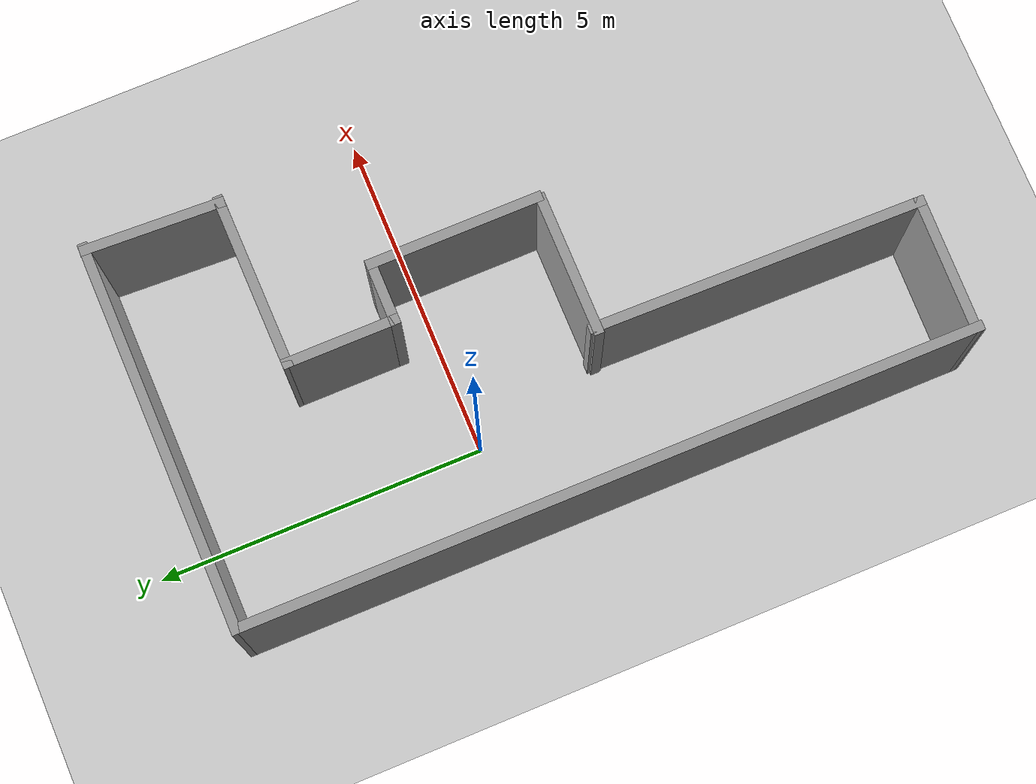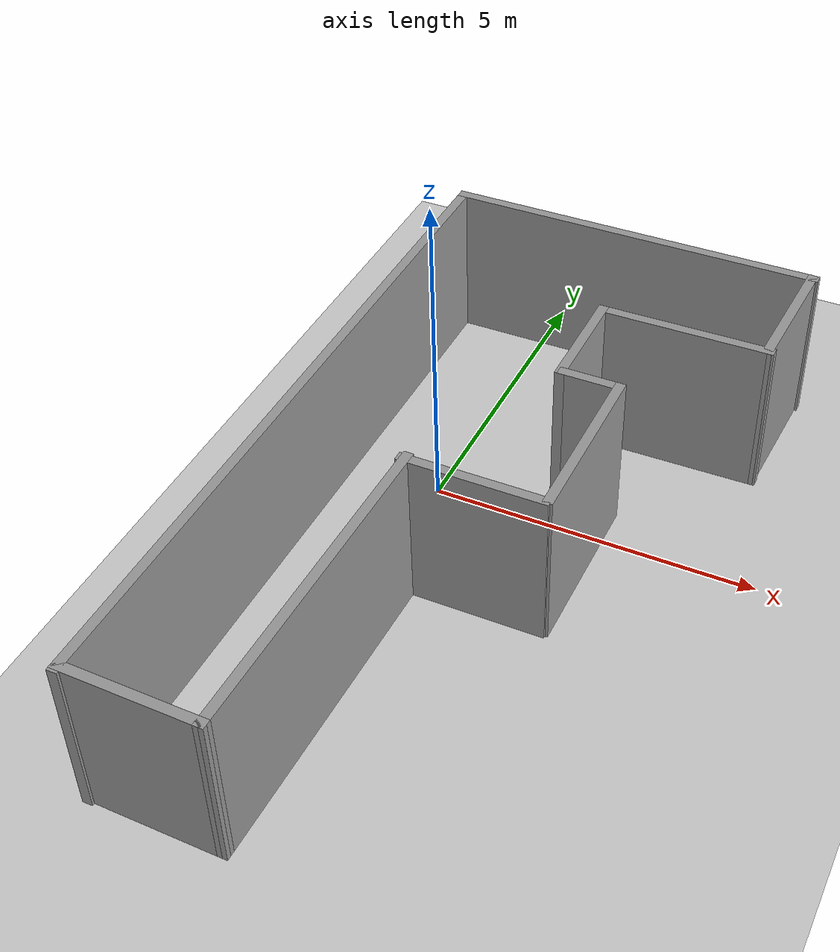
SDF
<sdf version="1.6">
 <world name="default">
  <plugin name="hello" filename="libhello.so"/>
  <light name="sun" type="directional">
   <pose>0 0 10 0 -0 0</pose>
   <diffuse>0.8 0.8 0.8 1</diffuse>
   <specular>0.2 0.2 0.2 1</specular>
   <attenuation>
    <range>1000</range>
    <constant>0.9</constant>
    <linear>0.01</linear>
    <quadratic>0.001</quadratic>
   </attenuation>
   <direction>-0.5 0.1 -0.9</direction>
  </light>
  <model name="ground_plane">
   <static>1</static>
   <link name="link">
    <collision name="collision">
     <geometry><plane><normal>0 0 1</normal><size>100 100</size></plane></geometry>
     <surface>
      <contact><collide_bitmask>65535</collide_bitmask></contact>
      <friction><ode><mu>100</mu><mu2>50</mu2></ode></friction>
     </surface>
    </collision>
    <visual name="visual">
     <cast_shadows>0</cast_shadows>
     <geometry><plane><normal>0 0 1</normal><size>100 100</size></plane></geometry>
     <material>
      <script><uri>file://media/materials/scripts/gazebo.material</uri><name>Gazebo/Grey</name></script>
     </material>
    </visual>
   </link>
  </model>
  <gravity>0 0 -9.8</gravity>
  <magnetic_field>6e-06 2.3e-05 -4.2e-05</magnetic_field>
  <atmosphere type="adiabatic"/>
  <physics name="default_physics" default="0" type="ode">
   <max_step_size>0.001</max_step_size>
   <real_time_factor>1</real_time_factor>
   <real_time_update_rate>1000</real_time_update_rate>
  </physics>
  <scene><ambient>0.4 0.4 0.4 1</ambient><background>0.7 0.7 0.7 1</background><shadows>1</shadows></scene>
  <spherical_coordinates>
   <surface_model>EARTH_WGS84</surface_model>
   <latitude_deg>0</latitude_deg>
   <longitude_deg>0</longitude_deg>
   <elevation>0</elevation>
   <heading_deg>0</heading_deg>
  </spherical_coordinates>
  <plugin name="collision_map_creator" filename="libcollision_map_creator.so"/>
  <model name="build3">
   <pose>1.41836 -1.37193 0 0 -0 0</pose>
   <link name="Wall_0">
    <collision name="Wall_0_Collision">
     <geometry><box><size>5.9389 0.15 2.5</size></box></geometry>
     <pose>0 0 1.25 0 -0 0</pose>
    </collision>
    <visual name="Wall_0_Visual">
     <pose>0 0 1.25 0 -0 0</pose>
     <geometry><box><size>5.9389 0.15 2.5</size></box></geometry>
     <material>
      <script><uri>file://media/materials/scripts/gazebo.material</uri><name>Gazebo/Grey</name></script>
      <ambient>1 1 1 1</ambient>
     </material>
     <meta><layer>0</layer></meta>
    </visual>
    <pose>0.020798 5.51965 0 0 -0 0.005284</pose>
   </link>
   <link name="Wall_10">
    <collision name="Wall_10_Collision">
     <geometry><box><size>2.14269 0.15 2.5</size></box></geometry>
     <pose>0 0 1.25 0 -0 0</pose>
    </collision>
    <visual name="Wall_10_Visual">
     <pose>0 0 1.25 0 -0 0</pose>
     <geometry><box><size>2.14269 0.15 2.5</size></box></geometry>
     <material>
      <script><uri>file://media/materials/scripts/gazebo.material</uri><name>Gazebo/Grey</name></script>
      <ambient>1 1 1 1</ambient>
     </material>
     <meta><layer>0</layer></meta>
    </visual>
    <pose>2.84232 4.5395 0 0 -0 1.52833</pose>
   </link>
   <link name="Wall_2">
    <collision name="Wall_2_Collision">
     <geometry><box><size>11.1505 0.15 2.5</size></box></geometry>
     <pose>0 0 1.25 0 -0 0</pose>
    </collision>
    <visual name="Wall_2_Visual">
     <pose>0 0 1.25 0 -0 0</pose>
     <geometry><box><size>11.1505 0.15 2.5</size></box></geometry>
     <material>
      <script><uri>file://media/materials/scripts/gazebo.material</uri><name>Gazebo/Grey</name></script>
      <ambient>1 1 1 1</ambient>
     </material>
     <meta><layer>0</layer></meta>
    </visual>
    <pose>-2.89384 -0.036314 0 0 0 -1.57447</pose>
   </link>
   <link name="Wall_3">
    <collision name="Wall_3_Collision">
     <geometry><box><size>2.10627 0.15 2.5</size></box></geometry>
     <pose>0 0 1.25 0 -0 0</pose>
    </collision>
    <visual name="Wall_3_Visual">
     <pose>0 0 1.25 0 -0 0</pose>
     <geometry><box><size>2.10627 0.15 2.5</size></box></geometry>
     <material>
      <script><uri>file://media/materials/scripts/gazebo.material</uri><name>Gazebo/Grey</name></script>
      <ambient>1 1 1 1</ambient>
     </material>
     <meta><layer>0</layer></meta>
    </visual>
    <pose>-1.93614 -5.5163 0 0 0 -0.020681</pose>
   </link>
   <link name="Wall_4">
    <collision name="Wall_4_Collision">
     <geometry><box><size>5.0857 0.15 2.5</size></box></geometry>
     <pose>0 0 1.25 0 -0 0</pose>
    </collision>
    <visual name="Wall_4_Visual">
     <pose>0 0 1.25 0 -0 0</pose>
     <geometry><box><size>5.0857 0.15 2.5</size></box></geometry>
     <material>
      <script><uri>file://media/materials/scripts/gazebo.material</uri><name>Gazebo/Grey</name></script>
      <ambient>1 1 1 1</ambient>
     </material>
     <meta><layer>0</layer></meta>
    </visual>
    <pose>-0.917758 -3.06901 0 0 -0 1.5544</pose>
   </link>
   <link name="Wall_5">
    <collision name="Wall_5_Collision">
     <geometry><box><size>2.19089 0.15 2.5</size></box></geometry>
     <pose>0 0 1.25 0 -0 0</pose>
    </collision>
    <visual name="Wall_5_Visual">
     <pose>0 0 1.25 0 -0 0</pose>
     <geometry><box><size>2.19089 0.15 2.5</size></box></geometry>
     <material>
      <script><uri>file://media/materials/scripts/gazebo.material</uri><name>Gazebo/Grey</name></script>
      <ambient>1 1 1 1</ambient>
     </material>
     <meta><layer>0</layer></meta>
    </visual>
    <pose>0.102687 -0.641952 0 0 -0 0</pose>
   </link>
   <link name="Wall_6">
    <collision name="Wall_6_Collision">
     <geometry><box><size>2.66497 0.15 2.5</size></box></geometry>
     <pose>0 0 1.25 0 -0 0</pose>
    </collision>
    <visual name="Wall_6_Visual">
     <pose>0 0 1.25 0 -0 0</pose>
     <geometry><box><size>2.66497 0.15 2.5</size></box></geometry>
     <material>
      <script><uri>file://media/materials/scripts/gazebo.material</uri><name>Gazebo/Grey</name></script>
      <ambient>1 1 1 1</ambient>
     </material>
     <meta><layer>0</layer></meta>
    </visual>
    <pose>1.16359 0.655987 0 0 -0 1.5708</pose>
   </link>
   <link name="Wall_7">
    <collision name="Wall_7_Collision">
     <geometry><box><size>0.940888 0.15 2.5</size></box></geometry>
     <pose>0 0 1.25 0 -0 0</pose>
    </collision>
    <visual name="Wall_7_Visual">
     <pose>0 0 1.25 0 -0 0</pose>
     <geometry><box><size>0.940888 0.15 2.5</size></box></geometry>
     <material>
      <script><uri>file://media/materials/scripts/gazebo.material</uri><name>Gazebo/Grey</name></script>
      <ambient>1 1 1 1</ambient>
     </material>
     <meta><layer>0</layer></meta>
    </visual>
    <pose>0.687231 1.91347 0 0 -0 3.14159</pose>
   </link>
   <link name="Wall_8">
    <collision name="Wall_8_Collision">
     <geometry><box><size>1.75 0.15 2.5</size></box></geometry>
     <pose>0 0 1.25 0 -0 0</pose>
    </collision>
    <visual name="Wall_8_Visual">
     <pose>0 0 1.25 0 -0 0</pose>
     <geometry><box><size>1.75 0.15 2.5</size></box></geometry>
     <material>
      <script><uri>file://media/materials/scripts/gazebo.material</uri><name>Gazebo/Grey</name></script>
      <ambient>1 1 1 1</ambient>
     </material>
     <meta><layer>0</layer></meta>
    </visual>
    <pose>0.291787 2.71347 0 0 -0 1.5708</pose>
   </link>
   <link name="Wall_9">
    <collision name="Wall_9_Collision">
     <geometry><box><size>2.689 0.15 2.5</size></box></geometry>
     <pose>0 0 1.25 0 -0 0</pose>
    </collision>
    <visual name="Wall_9_Visual">
     <pose>0 0 1.25 0 -0 0</pose>
     <geometry><box><size>2.689 0.15 2.5</size></box></geometry>
     <material>
      <script><uri>file://media/materials/scripts/gazebo.material</uri><name>Gazebo/Grey</name></script>
      <ambient>1 1 1 1</ambient>
     </material>
     <meta><layer>0</layer></meta>
    </visual>
    <pose>1.5612 3.52876 0 0 -0 0.012048</pose>
   </link>
   <static>1</static>
  </model>
 </world>
</sdf>
